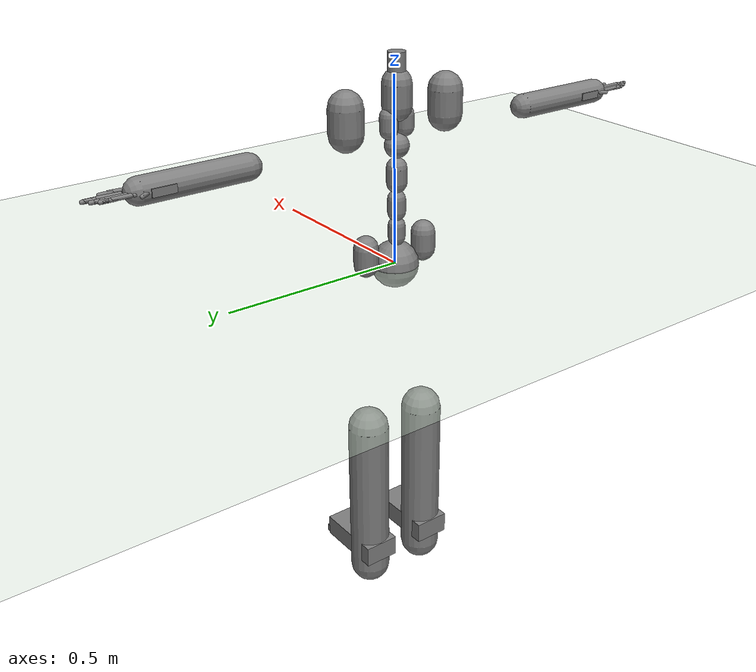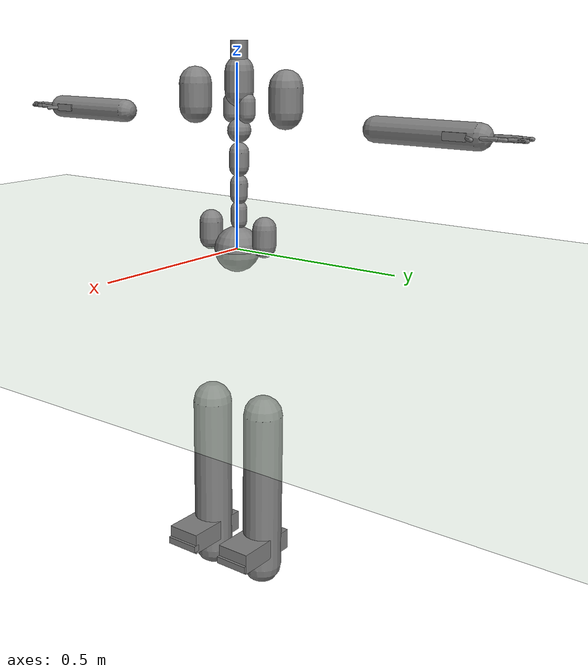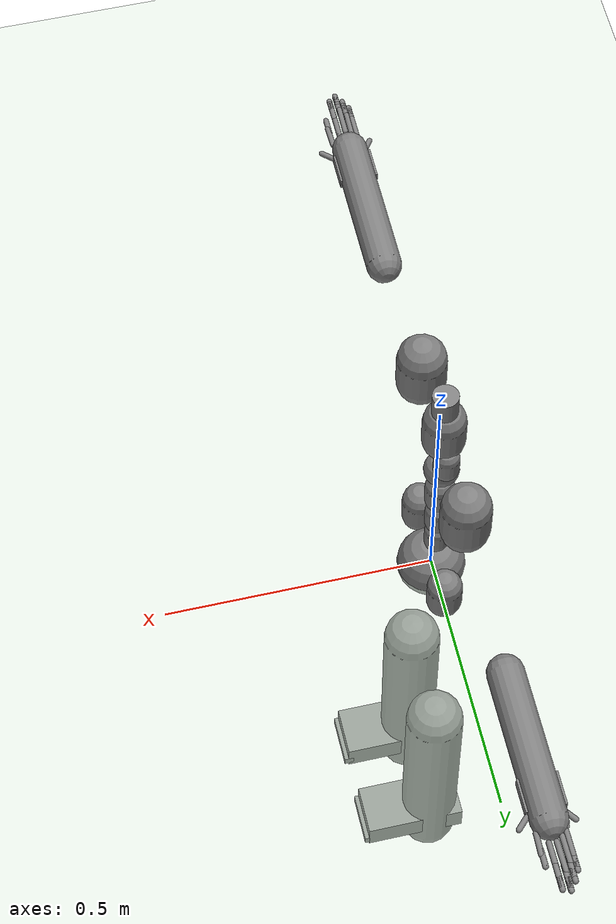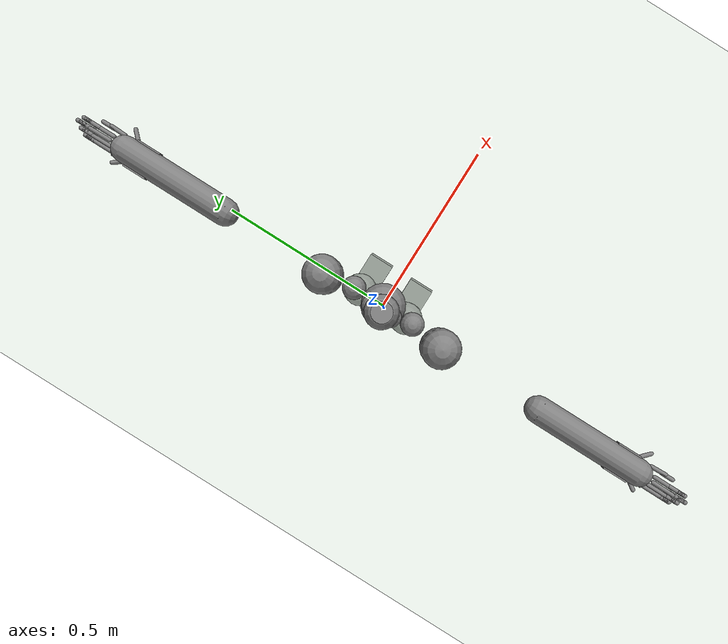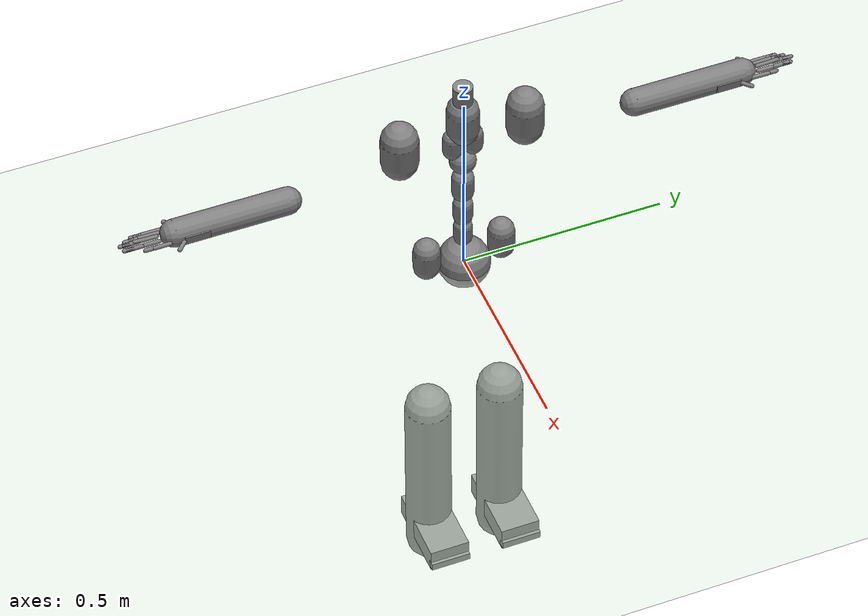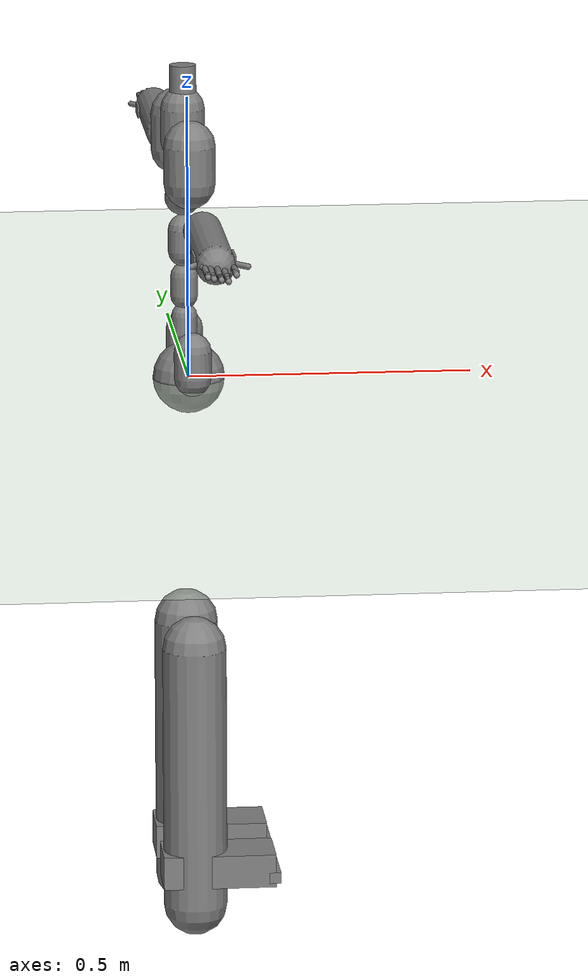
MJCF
<?xml version="1.0" ?>
<mujoco model="humanoid">
  <compiler coordinate="local"/>
  <statistic extent="2" center="0 0 1"/>
  <option timestep="0.00555"/>
  <default>
    <motor ctrlrange="-1 1" ctrllimited="true"/>
    <geom type="capsule" condim="1" friction="1.0 0.05 0.05" solimp=".9 .99 .003" solref=".015 1"/>
    <joint type="hinge" damping="0.1" stiffness="5" armature=".007" limited="true" solimplimit="0 .99 .01"/>
    <site size=".04" group="3"/>
  </default>
  <asset>
    <texture type="skybox" builtin="gradient" rgb1=".4 .5 .6" rgb2="0 0 0" width="100" height="100"/>
    <texture builtin="flat" height="1278" mark="cross" markrgb="1 1 1" name="texgeom" random="0.01" rgb1="0.8 0.6 0.4" rgb2="0.8 0.6 0.4" type="cube" width="127"/>
    <texture builtin="checker" height="100" name="texplane" rgb1="0 0 0" rgb2="0.8 0.8 0.8" type="2d" width="100"/>
    <material name="MatPlane" reflectance="0.5" shininess="1" specular="1" texrepeat="60 60" texture="texplane"/>
    <material name="geom" texture="texgeom" texuniform="true"/>
  </asset>
  <worldbody>
    <light cutoff="100" diffuse="1 1 1" dir="-0 0 -1.3" directional="true" exponent="1" pos="0 0 1.3" specular=".1 .1 .1"/>
    <geom conaffinity="1" condim="3" name="floor" pos="0 0 0" rgba="0.8 0.9 0.8 1" size="100 100 .2" type="plane" material="MatPlane"/>
    <body name="pHipOrigin" pos="0 0 0">
      <freejoint name="pHipOrigin"/>
      <geom type="sphere" contype="1" conaffinity="1" density="4629.6296296296305" size="0.06372" pos="0.0000 0.0000 -0.0000"/>
      <body name="jL5S1" pos="-0.00718035 0 0.06462294">
        <geom type="capsule" contype="1" conaffinity="1" density="1000" fromto="0 0 0.01300 0 0 0.04551" size="0.02276"/>
        <joint name="jL5S1_x" type="hinge" pos="0 0 0" axis="1 0 0" stiffness="500" damping="500" armature="0.02" range="-180.0000 180.0000"/>
        <joint name="jL5S1_y" type="hinge" pos="0 0 0" axis="0 1 0" stiffness="500" damping="500" armature="0.02" range="-180.0000 180.0000"/>
        <joint name="jL5S1_z" type="hinge" pos="0 0 0" axis="0 0 1" stiffness="500" damping="500" armature="0.02" range="-180.0000 180.0000"/>
        <body name="jL4L3" pos="0 0 0.06891633">
          <geom type="capsule" contype="1" conaffinity="1" density="1000" fromto="0 0 0.01378 0 0 0.04824" size="0.02412"/>
          <joint name="jL4L3_x" type="hinge" pos="0 0 0" axis="1 0 0" stiffness="500" damping="500" armature="0.02" range="-180.0000 180.0000"/>
          <joint name="jL4L3_y" type="hinge" pos="0 0 0" axis="0 1 0" stiffness="500" damping="500" armature="0.02" range="-180.0000 180.0000"/>
          <joint name="jL4L3_z" type="hinge" pos="0 0 0" axis="0 0 1" stiffness="500" damping="500" armature="0.02" range="-180.0000 180.0000"/>
          <body name="jL1T12" pos="-0.00059830 0 0.07754974">
            <geom type="capsule" contype="1" conaffinity="1" density="1000" fromto="0 0 0.01551 0 0 0.05429" size="0.02714"/>
            <joint name="jL1T12_x" type="hinge" pos="0 0 0" axis="1 0 0" stiffness="500" damping="500" armature="0.02" range="-180.0000 180.0000"/>
            <joint name="jL1T12_y" type="hinge" pos="0 0 0" axis="0 1 0" stiffness="500" damping="500" armature="0.02" range="-180.0000 180.0000"/>
            <joint name="jL1T12_z" type="hinge" pos="0 0 0" axis="0 0 1" stiffness="500" damping="500" armature="0.02" range="-180.0000 180.0000"/>
            <body name="jT9T8" pos="-0.00062355 0 0.08066581">
              <geom type="sphere" contype="1" conaffinity="1" density="1000" size="0.03227" pos="0.000 0.0000 0.032267"/>
              <joint name="jT9T8_x" type="hinge" pos="0 0 0" axis="1 0 0" stiffness="500" damping="500" armature="0.02" range="-180.0000 180.0000"/>
              <joint name="jT9T8_y" type="hinge" pos="0 0 0" axis="0 1 0" stiffness="500" damping="500" armature="0.02" range="-180.0000 180.0000"/>
              <joint name="jT9T8_z" type="hinge" pos="0 0 0" axis="0 0 1" stiffness="500" damping="500" armature="0.02" range="-180.0000 180.0000"/>
              <body name="jT1C7" pos="0 0 0.11084801">
                <geom type="capsule" contype="1" conaffinity="1" density="1000" fromto="0 0 0.02217 0 0 0.07759" size="0.03880"/>
                <joint name="jT1C7_x" type="hinge" pos="0 0 0" axis="1 0 0" stiffness="500" damping="500" armature="0.02" range="-180.0000 180.0000"/>
                <joint name="jT1C7_y" type="hinge" pos="0 0 0" axis="0 1 0" stiffness="500" damping="500" armature="0.02" range="-180.0000 180.0000"/>
                <joint name="jT1C7_z" type="hinge" pos="0 0 0" axis="0 0 1" stiffness="500" damping="500" armature="0.02" range="-180.0000 180.0000"/>
                <body name="jC1Head" pos="0.00091722 0 0.07774604">
                  <geom type="cylinder" contype="1" conaffinity="1" density="1000" fromto="0 0 0 0 0 0.07775" size="0.02333"/>
                  <joint name="jC1Head_x" type="hinge" pos="0 0 0" axis="1 0 0" stiffness="500" damping="500" armature="0.02" range="-180.0000 180.0000"/>
                  <joint name="jC1Head_y" type="hinge" pos="0 0 0" axis="0 1 0" stiffness="500" damping="500" armature="0.02" range="-180.0000 180.0000"/>
                  <joint name="jC1Head_z" type="hinge" pos="0 0 0" axis="0 0 1" stiffness="500" damping="500" armature="0.02" range="-180.0000 180.0000"/>
                </body>
              </body>
              <body name="jRightT4Shoulder" pos="0 -0.02539200 0.06191128">
                <geom type="capsule" contype="1" conaffinity="1" density="1000" fromto="0 0 0.01338 0 0 0.04684" size="0.02342"/>
                <joint name="jRightT4Shoulder_x" type="hinge" pos="0 0 0" axis="1 0 0" stiffness="500" damping="500" armature="0.02" range="-180.0000 180.0000"/>
                <joint name="jRightT4Shoulder_y" type="hinge" pos="0 0 0" axis="0 1 0" stiffness="500" damping="500" armature="0.02" range="-180.0000 180.0000"/>
                <joint name="jRightT4Shoulder_z" type="hinge" pos="0 0 0" axis="0 0 1" stiffness="500" damping="500" armature="0.02" range="-180.0000 180.0000"/>
                <body name="jRightShoulder" pos="0 -0.12868479 0">
                  <geom type="capsule" contype="1" conaffinity="1" density="1000" fromto="0 0 0.02574 0 0 0.09008" size="0.04504"/>
                  <joint name="jRightShoulder_x" type="hinge" pos="0 0 0" axis="1 0 0" stiffness="500" damping="500" armature="0.02" range="-180.0000 180.0000"/>
                  <joint name="jRightShoulder_y" type="hinge" pos="0 0 0" axis="0 1 0" stiffness="500" damping="500" armature="0.02" range="-180.0000 180.0000"/>
                  <joint name="jRightShoulder_z" type="hinge" pos="0 0 0" axis="0 0 1" stiffness="500" damping="500" armature="0.02" range="-180.0000 180.0000"/>
                  <body name="jRightElbow" pos="0 -0.27213329 0">
                    <geom type="capsule" contype="1" conaffinity="1" density="1000" fromto="0 0 0 0.00000000 -0.27213329 0.00000000" size="0.03266"/>
                    <joint name="jRightElbow_x" type="hinge" pos="0 0 0" axis="1 0 0" stiffness="500" damping="500" armature="0.02" range="-180.0000 180.0000"/>
                    <joint name="jRightElbow_y" type="hinge" pos="0 0 0" axis="0 1 0" stiffness="500" damping="500" armature="0.02" range="-180.0000 180.0000"/>
                    <joint name="jRightElbow_z" type="hinge" pos="0 0 0" axis="0 0 1" stiffness="500" damping="500" armature="0.02" range="-180.0000 180.0000"/>
                    <body name="jRightWrist" pos="0.00009098 -0.22603785 0">
                      <geom density="1000" type="box" pos="0 0 0" size="0.035 0.03 0.01" quat="1.0000 0.0000 0.0000 0.0000"/>
                      <joint name="jRightWrist_x" type="hinge" pos="0 0 0" axis="1 0 0" stiffness="500" damping="500" armature="0.02" range="-180.0000 180.0000"/>
                      <joint name="jRightWrist_y" type="hinge" pos="0 0 0" axis="0 1 0" stiffness="500" damping="500" armature="0.02" range="-180.0000 180.0000"/>
                      <joint name="jRightWrist_z" type="hinge" pos="0 0 0" axis="0 0 1" stiffness="500" damping="500" armature="0.02" range="-180.0000 180.0000"/>
                      <body name="jRightFirstCMC" pos="0.02623028 -0.02514320 -0.00118787">
                        <geom type="capsule" contype="1" conaffinity="1" density="1000" fromto="0 0 0 0.02623028 -0.02514320 -0.00118787" size="0.005"/>
                        <joint name="jRightFirstCMC_x" type="hinge" pos="0 0 0" axis="1 0 0" stiffness="500" damping="500" armature="0.02" range="-180.0000 180.0000"/>
                        <joint name="jRightFirstCMC_y" type="hinge" pos="0 0 0" axis="0 1 0" stiffness="500" damping="500" armature="0.02" range="-180.0000 180.0000"/>
                        <joint name="jRightFirstCMC_z" type="hinge" pos="0 0 0" axis="0 0 1" stiffness="500" damping="500" armature="0.02" range="-180.0000 180.0000"/>
                        <body name="jRightFirstMCP" pos="0.00136228 -0.03844255 0.00081229">
                          <geom type="capsule" contype="1" conaffinity="1" density="1000" fromto="0 0 0 0.00136228 -0.03844255 0.00081229" size="0.005"/>
                          <joint name="jRightFirstMCP_x" type="hinge" pos="0 0 0" axis="1 0 0" stiffness="500" damping="500" armature="0.02" range="-180.0000 180.0000"/>
                          <joint name="jRightFirstMCP_y" type="hinge" pos="0 0 0" axis="0 1 0" stiffness="500" damping="500" armature="0.02" range="-180.0000 180.0000"/>
                          <joint name="jRightFirstMCP_z" type="hinge" pos="0 0 0" axis="0 0 1" stiffness="500" damping="500" armature="0.02" range="-180.0000 180.0000"/>
                          <body name="jRightIP" pos="0 -0.02956805 0">
                            <geom type="capsule" contype="1" conaffinity="1" density="1000" fromto="0 0 0 0.00000000 -0.02956805 0.00000000" size="0.005"/>
                            <joint name="jRightIP_x" type="hinge" pos="0 0 0" axis="1 0 0" stiffness="500" damping="500" armature="0.02" range="-180.0000 180.0000"/>
                            <joint name="jRightIP_y" type="hinge" pos="0 0 0" axis="0 1 0" stiffness="500" damping="500" armature="0.02" range="-180.0000 180.0000"/>
                            <joint name="jRightIP_z" type="hinge" pos="0 0 0" axis="0 0 1" stiffness="500" damping="500" armature="0.02" range="-180.0000 180.0000"/>
                          </body>
                        </body>
                      </body>
                      <body name="jRightSecondCMC" pos="0.01115523 -0.03259207 -0.00056848">
                        <geom type="capsule" contype="1" conaffinity="1" density="1000" fromto="0 0 0 0.01115523 -0.03259207 -0.00056848" size="0.005"/>
                        <joint name="jRightSecondCMC_x" type="hinge" pos="0 0 0" axis="1 0 0" stiffness="500" damping="500" armature="0.02" range="-180.0000 180.0000"/>
                        <joint name="jRightSecondCMC_y" type="hinge" pos="0 0 0" axis="0 1 0" stiffness="500" damping="500" armature="0.02" range="-180.0000 180.0000"/>
                        <joint name="jRightSecondCMC_z" type="hinge" pos="0 0 0" axis="0 0 1" stiffness="500" damping="500" armature="0.02" range="-180.0000 180.0000"/>
                        <body name="jRightSecondMCP" pos="-0.00032715 -0.05217789 -0.00054126">
                          <geom type="capsule" contype="1" conaffinity="1" density="1000" fromto="0 0 0 -0.00032715 -0.05217789 -0.00054126" size="0.005"/>
                          <joint name="jRightSecondMCP_x" type="hinge" pos="0 0 0" axis="1 0 0" stiffness="500" damping="500" armature="0.02" range="-180.0000 180.0000"/>
                          <joint name="jRightSecondMCP_y" type="hinge" pos="0 0 0" axis="0 1 0" stiffness="500" damping="500" armature="0.02" range="-180.0000 180.0000"/>
                          <joint name="jRightSecondMCP_z" type="hinge" pos="0 0 0" axis="0 0 1" stiffness="500" damping="500" armature="0.02" range="-180.0000 180.0000"/>
                          <body name="jRightSecondPIP" pos="0 -0.03924358 0">
                            <geom type="capsule" contype="1" conaffinity="1" density="1000" fromto="0 0 0 0.00000000 -0.03924358 0.00000000" size="0.005"/>
                            <joint name="jRightSecondPIP_x" type="hinge" pos="0 0 0" axis="1 0 0" stiffness="500" damping="500" armature="0.02" range="-180.0000 180.0000"/>
                            <joint name="jRightSecondPIP_y" type="hinge" pos="0 0 0" axis="0 1 0" stiffness="500" damping="500" armature="0.02" range="-180.0000 180.0000"/>
                            <joint name="jRightSecondPIP_z" type="hinge" pos="0 0 0" axis="0 0 1" stiffness="500" damping="500" armature="0.02" range="-180.0000 180.0000"/>
                            <body name="jRightSecondDIP" pos="0 -0.02142911 0">
                              <geom type="capsule" contype="1" conaffinity="1" density="1000" fromto="0 0 0 0.00000000 -0.02142911 0.00000000" size="0.005"/>
                              <joint name="jRightSecondDIP_x" type="hinge" pos="0 0 0" axis="1 0 0" stiffness="500" damping="500" armature="0.02" range="-180.0000 180.0000"/>
                              <joint name="jRightSecondDIP_y" type="hinge" pos="0 0 0" axis="0 1 0" stiffness="500" damping="500" armature="0.02" range="-180.0000 180.0000"/>
                              <joint name="jRightSecondDIP_z" type="hinge" pos="0 0 0" axis="0 0 1" stiffness="500" damping="500" armature="0.02" range="-180.0000 180.0000"/>
                            </body>
                          </body>
                        </body>
                      </body>
                      <body name="jRightThirdCMC" pos="-0.00063336 -0.03425053 0.00143994">
                        <geom type="capsule" contype="1" conaffinity="1" density="1000" fromto="0 0 0 -0.00063336 -0.03425053 0.00143994" size="0.005"/>
                        <joint name="jRightThirdCMC_x" type="hinge" pos="0 0 0" axis="1 0 0" stiffness="500" damping="500" armature="0.02" range="-180.0000 180.0000"/>
                        <joint name="jRightThirdCMC_y" type="hinge" pos="0 0 0" axis="0 1 0" stiffness="500" damping="500" armature="0.02" range="-180.0000 180.0000"/>
                        <joint name="jRightThirdCMC_z" type="hinge" pos="0 0 0" axis="0 0 1" stiffness="500" damping="500" armature="0.02" range="-180.0000 180.0000"/>
                        <body name="jRightThirdMCP" pos="-0.00063458 -0.05257476 0.00143036">
                          <geom type="capsule" contype="1" conaffinity="1" density="1000" fromto="0 0 0 -0.00063458 -0.05257476 0.00143036" size="0.005"/>
                          <joint name="jRightThirdMCP_x" type="hinge" pos="0 0 0" axis="1 0 0" stiffness="500" damping="500" armature="0.02" range="-180.0000 180.0000"/>
                          <joint name="jRightThirdMCP_y" type="hinge" pos="0 0 0" axis="0 1 0" stiffness="500" damping="500" armature="0.02" range="-180.0000 180.0000"/>
                          <joint name="jRightThirdMCP_z" type="hinge" pos="0 0 0" axis="0 0 1" stiffness="500" damping="500" armature="0.02" range="-180.0000 180.0000"/>
                          <body name="jRightThirdPIP" pos="0 -0.04101169 0">
                            <geom type="capsule" contype="1" conaffinity="1" density="1000" fromto="0 0 0 0.00000000 -0.04101169 0.00000000" size="0.005"/>
                            <joint name="jRightThirdPIP_x" type="hinge" pos="0 0 0" axis="1 0 0" stiffness="500" damping="500" armature="0.02" range="-180.0000 180.0000"/>
                            <joint name="jRightThirdPIP_y" type="hinge" pos="0 0 0" axis="0 1 0" stiffness="500" damping="500" armature="0.02" range="-180.0000 180.0000"/>
                            <joint name="jRightThirdPIP_z" type="hinge" pos="0 0 0" axis="0 0 1" stiffness="500" damping="500" armature="0.02" range="-180.0000 180.0000"/>
                            <body name="jRightThirdDIP" pos="0 -0.02274145 0">
                              <geom type="capsule" contype="1" conaffinity="1" density="1000" fromto="0 0 0 0.00000000 -0.02274145 0.00000000" size="0.005"/>
                              <joint name="jRightThirdDIP_x" type="hinge" pos="0 0 0" axis="1 0 0" stiffness="500" damping="500" armature="0.02" range="-180.0000 180.0000"/>
                              <joint name="jRightThirdDIP_y" type="hinge" pos="0 0 0" axis="0 1 0" stiffness="500" damping="500" armature="0.02" range="-180.0000 180.0000"/>
                              <joint name="jRightThirdDIP_z" type="hinge" pos="0 0 0" axis="0 0 1" stiffness="500" damping="500" armature="0.02" range="-180.0000 180.0000"/>
                            </body>
                          </body>
                        </body>
                      </body>
                      <body name="jRightFourthCMC" pos="-0.01161715 -0.03235567 0.00076160">
                        <geom type="capsule" contype="1" conaffinity="1" density="1000" fromto="0 0 0 -0.01161715 -0.03235567 0.00076160" size="0.005"/>
                        <joint name="jRightFourthCMC_x" type="hinge" pos="0 0 0" axis="1 0 0" stiffness="500" damping="500" armature="0.02" range="-180.0000 180.0000"/>
                        <joint name="jRightFourthCMC_y" type="hinge" pos="0 0 0" axis="0 1 0" stiffness="500" damping="500" armature="0.02" range="-180.0000 180.0000"/>
                        <joint name="jRightFourthCMC_z" type="hinge" pos="0 0 0" axis="0 0 1" stiffness="500" damping="500" armature="0.02" range="-180.0000 180.0000"/>
                        <body name="jRightFourthMCP" pos="-0.00034028 -0.04663817 0.00073272">
                          <geom type="capsule" contype="1" conaffinity="1" density="1000" fromto="0 0 0 -0.00034028 -0.04663817 0.00073272" size="0.005"/>
                          <joint name="jRightFourthMCP_x" type="hinge" pos="0 0 0" axis="1 0 0" stiffness="500" damping="500" armature="0.02" range="-180.0000 180.0000"/>
                          <joint name="jRightFourthMCP_y" type="hinge" pos="0 0 0" axis="0 1 0" stiffness="500" damping="500" armature="0.02" range="-180.0000 180.0000"/>
                          <joint name="jRightFourthMCP_z" type="hinge" pos="0 0 0" axis="0 0 1" stiffness="500" damping="500" armature="0.02" range="-180.0000 180.0000"/>
                          <body name="jRightFourthPIP" pos="0 -0.03656799 0">
                            <geom type="capsule" contype="1" conaffinity="1" density="1000" fromto="0 0 0 0.00000000 -0.03656799 0.00000000" size="0.005"/>
                            <joint name="jRightFourthPIP_x" type="hinge" pos="0 0 0" axis="1 0 0" stiffness="500" damping="500" armature="0.02" range="-180.0000 180.0000"/>
                            <joint name="jRightFourthPIP_y" type="hinge" pos="0 0 0" axis="0 1 0" stiffness="500" damping="500" armature="0.02" range="-180.0000 180.0000"/>
                            <joint name="jRightFourthPIP_z" type="hinge" pos="0 0 0" axis="0 0 1" stiffness="500" damping="500" armature="0.02" range="-180.0000 180.0000"/>
                            <body name="jRightFourthDIP" pos="0 -0.02168475 0">
                              <geom type="capsule" contype="1" conaffinity="1" density="1000" fromto="0 0 0 0.00000000 -0.02168475 0.00000000" size="0.005"/>
                              <joint name="jRightFourthDIP_x" type="hinge" pos="0 0 0" axis="1 0 0" stiffness="500" damping="500" armature="0.02" range="-180.0000 180.0000"/>
                              <joint name="jRightFourthDIP_y" type="hinge" pos="0 0 0" axis="0 1 0" stiffness="500" damping="500" armature="0.02" range="-180.0000 180.0000"/>
                              <joint name="jRightFourthDIP_z" type="hinge" pos="0 0 0" axis="0 0 1" stiffness="500" damping="500" armature="0.02" range="-180.0000 180.0000"/>
                            </body>
                          </body>
                        </body>
                      </body>
                      <body name="jRightFifthCMC" pos="-0.02037089 -0.02838451 0.00055994">
                        <geom type="capsule" contype="1" conaffinity="1" density="1000" fromto="0 0 0 -0.02037089 -0.02838451 0.00055994" size="0.005"/>
                        <joint name="jRightFifthCMC_x" type="hinge" pos="0 0 0" axis="1 0 0" stiffness="500" damping="500" armature="0.02" range="-180.0000 180.0000"/>
                        <joint name="jRightFifthCMC_y" type="hinge" pos="0 0 0" axis="0 1 0" stiffness="500" damping="500" armature="0.02" range="-180.0000 180.0000"/>
                        <joint name="jRightFifthCMC_z" type="hinge" pos="0 0 0" axis="0 0 1" stiffness="500" damping="500" armature="0.02" range="-180.0000 180.0000"/>
                        <body name="jRightFifthMCP" pos="-0.00000645 -0.04369948 0.00060136">
                          <geom type="capsule" contype="1" conaffinity="1" density="1000" fromto="0 0 0 -0.00000645 -0.04369948 0.00060136" size="0.005"/>
                          <joint name="jRightFifthMCP_x" type="hinge" pos="0 0 0" axis="1 0 0" stiffness="500" damping="500" armature="0.02" range="-180.0000 180.0000"/>
                          <joint name="jRightFifthMCP_y" type="hinge" pos="0 0 0" axis="0 1 0" stiffness="500" damping="500" armature="0.02" range="-180.0000 180.0000"/>
                          <joint name="jRightFifthMCP_z" type="hinge" pos="0 0 0" axis="0 0 1" stiffness="500" damping="500" armature="0.02" range="-180.0000 180.0000"/>
                          <body name="jRightFifthPIP" pos="0 -0.03273370 0">
                            <geom type="capsule" contype="1" conaffinity="1" density="1000" fromto="0 0 0 0.00000000 -0.03273370 0.00000000" size="0.005"/>
                            <joint name="jRightFifthPIP_x" type="hinge" pos="0 0 0" axis="1 0 0" stiffness="500" damping="500" armature="0.02" range="-180.0000 180.0000"/>
                            <joint name="jRightFifthPIP_y" type="hinge" pos="0 0 0" axis="0 1 0" stiffness="500" damping="500" armature="0.02" range="-180.0000 180.0000"/>
                            <joint name="jRightFifthPIP_z" type="hinge" pos="0 0 0" axis="0 0 1" stiffness="500" damping="500" armature="0.02" range="-180.0000 180.0000"/>
                            <body name="jRightFifthDIP" pos="0 -0.01849218 0">
                              <geom type="capsule" contype="1" conaffinity="1" density="1000" fromto="0 0 0 0.00000000 -0.01849218 0.00000000" size="0.005"/>
                              <joint name="jRightFifthDIP_x" type="hinge" pos="0 0 0" axis="1 0 0" stiffness="500" damping="500" armature="0.02" range="-180.0000 180.0000"/>
                              <joint name="jRightFifthDIP_y" type="hinge" pos="0 0 0" axis="0 1 0" stiffness="500" damping="500" armature="0.02" range="-180.0000 180.0000"/>
                              <joint name="jRightFifthDIP_z" type="hinge" pos="0 0 0" axis="0 0 1" stiffness="500" damping="500" armature="0.02" range="-180.0000 180.0000"/>
                            </body>
                          </body>
                        </body>
                      </body>
                    </body>
                  </body>
                </body>
              </body>
              <body name="jLeftT4Shoulder" pos="0 0.02546286 0.06208405">
                <geom type="capsule" contype="1" conaffinity="1" density="1000" fromto="0 0 0.01342 0 0 0.04697" size="0.02349"/>
                <joint name="jLeftT4Shoulder_x" type="hinge" pos="0 0 0" axis="1 0 0" stiffness="500" damping="500" armature="0.02" range="-180.0000 180.0000"/>
                <joint name="jLeftT4Shoulder_y" type="hinge" pos="0 0 0" axis="0 1 0" stiffness="500" damping="500" armature="0.02" range="-180.0000 180.0000"/>
                <joint name="jLeftT4Shoulder_z" type="hinge" pos="0 0 0" axis="0 0 1" stiffness="500" damping="500" armature="0.02" range="-180.0000 180.0000"/>
                <body name="jLeftShoulder" pos="0 0.12795460 0">
                  <geom type="capsule" contype="1" conaffinity="1" density="1000" fromto="0 0 0.02559 0 0 0.08957" size="0.04478"/>
                  <joint name="jLeftShoulder_x" type="hinge" pos="0 0 0" axis="1 0 0" stiffness="500" damping="500" armature="0.02" range="-180.0000 180.0000"/>
                  <joint name="jLeftShoulder_y" type="hinge" pos="0 0 0" axis="0 1 0" stiffness="500" damping="500" armature="0.02" range="-180.0000 180.0000"/>
                  <joint name="jLeftShoulder_z" type="hinge" pos="0 0 0" axis="0 0 1" stiffness="500" damping="500" armature="0.02" range="-180.0000 180.0000"/>
                  <body name="jLeftElbow" pos="0 0.27217937 0">
                    <geom type="capsule" contype="1" conaffinity="1" density="1000" fromto="0 0 0 0.00000000 0.27217937 0.00000000" size="0.03266"/>
                    <joint name="jLeftElbow_x" type="hinge" pos="0 0 0" axis="1 0 0" stiffness="500" damping="500" armature="0.02" range="-180.0000 180.0000"/>
                    <joint name="jLeftElbow_y" type="hinge" pos="0 0 0" axis="0 1 0" stiffness="500" damping="500" armature="0.02" range="-180.0000 180.0000"/>
                    <joint name="jLeftElbow_z" type="hinge" pos="0 0 0" axis="0 0 1" stiffness="500" damping="500" armature="0.02" range="-180.0000 180.0000"/>
                    <body name="jLeftWrist" pos="0.00009058 0.22505700 0">
                      <geom density="1000" type="box" pos="0 0 0" size="0.035 0.03 0.01" quat="1.0000 0.0000 0.0000 0.0000"/>
                      <joint name="jLeftWrist_x" type="hinge" pos="0 0 0" axis="1 0 0" stiffness="500" damping="500" armature="0.02" range="-180.0000 180.0000"/>
                      <joint name="jLeftWrist_y" type="hinge" pos="0 0 0" axis="0 1 0" stiffness="500" damping="500" armature="0.02" range="-180.0000 180.0000"/>
                      <joint name="jLeftWrist_z" type="hinge" pos="0 0 0" axis="0 0 1" stiffness="500" damping="500" armature="0.02" range="-180.0000 180.0000"/>
                      <body name="jLeftFirstCMC" pos="0.02567327 0.02573390 -0.00114905">
                        <geom type="capsule" contype="1" conaffinity="1" density="1000" fromto="0 0 0 0.02567327 0.02573390 -0.00114905" size="0.005"/>
                        <joint name="jLeftFirstCMC_x" type="hinge" pos="0 0 0" axis="1 0 0" stiffness="500" damping="500" armature="0.02" range="-180.0000 180.0000"/>
                        <joint name="jLeftFirstCMC_y" type="hinge" pos="0 0 0" axis="0 1 0" stiffness="500" damping="500" armature="0.02" range="-180.0000 180.0000"/>
                        <joint name="jLeftFirstCMC_z" type="hinge" pos="0 0 0" axis="0 0 1" stiffness="500" damping="500" armature="0.02" range="-180.0000 180.0000"/>
                        <body name="jLeftFirstMCP" pos="0.00134915 0.03844168 0.00079161">
                          <geom type="capsule" contype="1" conaffinity="1" density="1000" fromto="0 0 0 0.00134915 0.03844168 0.00079161" size="0.005"/>
                          <joint name="jLeftFirstMCP_x" type="hinge" pos="0 0 0" axis="1 0 0" stiffness="500" damping="500" armature="0.02" range="-180.0000 180.0000"/>
                          <joint name="jLeftFirstMCP_y" type="hinge" pos="0 0 0" axis="0 1 0" stiffness="500" damping="500" armature="0.02" range="-180.0000 180.0000"/>
                          <joint name="jLeftFirstMCP_z" type="hinge" pos="0 0 0" axis="0 0 1" stiffness="500" damping="500" armature="0.02" range="-180.0000 180.0000"/>
                          <body name="jLeftIP" pos="0 0.02956805 0">
                            <geom type="capsule" contype="1" conaffinity="1" density="1000" fromto="0 0 0 0.00000000 0.02956805 0.00000000" size="0.005"/>
                            <joint name="jLeftIP_x" type="hinge" pos="0 0 0" axis="1 0 0" stiffness="500" damping="500" armature="0.02" range="-180.0000 180.0000"/>
                            <joint name="jLeftIP_y" type="hinge" pos="0 0 0" axis="0 1 0" stiffness="500" damping="500" armature="0.02" range="-180.0000 180.0000"/>
                            <joint name="jLeftIP_z" type="hinge" pos="0 0 0" axis="0 0 1" stiffness="500" damping="500" armature="0.02" range="-180.0000 180.0000"/>
                          </body>
                        </body>
                      </body>
                      <body name="jLeftSecondCMC" pos="0.01128372 0.03253210 -0.00057318">
                        <geom type="capsule" contype="1" conaffinity="1" density="1000" fromto="0 0 0 0.01128372 0.03253210 -0.00057318" size="0.005"/>
                        <joint name="jLeftSecondCMC_x" type="hinge" pos="0 0 0" axis="1 0 0" stiffness="500" damping="500" armature="0.02" range="-180.0000 180.0000"/>
                        <joint name="jLeftSecondCMC_y" type="hinge" pos="0 0 0" axis="0 1 0" stiffness="500" damping="500" armature="0.02" range="-180.0000 180.0000"/>
                        <joint name="jLeftSecondCMC_z" type="hinge" pos="0 0 0" axis="0 0 1" stiffness="500" damping="500" armature="0.02" range="-180.0000 180.0000"/>
                        <body name="jLeftSecondMCP" pos="-0.00028525 0.05217896 -0.00054794">
                          <geom type="capsule" contype="1" conaffinity="1" density="1000" fromto="0 0 0 -0.00028525 0.05217896 -0.00054794" size="0.005"/>
                          <joint name="jLeftSecondMCP_x" type="hinge" pos="0 0 0" axis="1 0 0" stiffness="500" damping="500" armature="0.02" range="-180.0000 180.0000"/>
                          <joint name="jLeftSecondMCP_y" type="hinge" pos="0 0 0" axis="0 1 0" stiffness="500" damping="500" armature="0.02" range="-180.0000 180.0000"/>
                          <joint name="jLeftSecondMCP_z" type="hinge" pos="0 0 0" axis="0 0 1" stiffness="500" damping="500" armature="0.02" range="-180.0000 180.0000"/>
                          <body name="jLeftSecondPIP" pos="0 0.03924358 0">
                            <geom type="capsule" contype="1" conaffinity="1" density="1000" fromto="0 0 0 0.00000000 0.03924358 0.00000000" size="0.005"/>
                            <joint name="jLeftSecondPIP_x" type="hinge" pos="0 0 0" axis="1 0 0" stiffness="500" damping="500" armature="0.02" range="-180.0000 180.0000"/>
                            <joint name="jLeftSecondPIP_y" type="hinge" pos="0 0 0" axis="0 1 0" stiffness="500" damping="500" armature="0.02" range="-180.0000 180.0000"/>
                            <joint name="jLeftSecondPIP_z" type="hinge" pos="0 0 0" axis="0 0 1" stiffness="500" damping="500" armature="0.02" range="-180.0000 180.0000"/>
                            <body name="jLeftSecondDIP" pos="0 0.02142911 0">
                              <geom type="capsule" contype="1" conaffinity="1" density="1000" fromto="0 0 0 0.00000000 0.02142911 0.00000000" size="0.005"/>
                              <joint name="jLeftSecondDIP_x" type="hinge" pos="0 0 0" axis="1 0 0" stiffness="500" damping="500" armature="0.02" range="-180.0000 180.0000"/>
                              <joint name="jLeftSecondDIP_y" type="hinge" pos="0 0 0" axis="0 1 0" stiffness="500" damping="500" armature="0.02" range="-180.0000 180.0000"/>
                              <joint name="jLeftSecondDIP_z" type="hinge" pos="0 0 0" axis="0 0 1" stiffness="500" damping="500" armature="0.02" range="-180.0000 180.0000"/>
                            </body>
                          </body>
                        </body>
                      </body>
                      <body name="jLeftThirdCMC" pos="-0.00063708 0.03425361 0.00139195">
                        <geom type="capsule" contype="1" conaffinity="1" density="1000" fromto="0 0 0 -0.00063708 0.03425361 0.00139195" size="0.005"/>
                        <joint name="jLeftThirdCMC_x" type="hinge" pos="0 0 0" axis="1 0 0" stiffness="500" damping="500" armature="0.02" range="-180.0000 180.0000"/>
                        <joint name="jLeftThirdCMC_y" type="hinge" pos="0 0 0" axis="0 1 0" stiffness="500" damping="500" armature="0.02" range="-180.0000 180.0000"/>
                        <joint name="jLeftThirdCMC_z" type="hinge" pos="0 0 0" axis="0 0 1" stiffness="500" damping="500" armature="0.02" range="-180.0000 180.0000"/>
                        <body name="jLeftThirdMCP" pos="-0.00063970 0.05257578 0.00140160">
                          <geom type="capsule" contype="1" conaffinity="1" density="1000" fromto="0 0 0 -0.00063970 0.05257578 0.00140160" size="0.005"/>
                          <joint name="jLeftThirdMCP_x" type="hinge" pos="0 0 0" axis="1 0 0" stiffness="500" damping="500" armature="0.02" range="-180.0000 180.0000"/>
                          <joint name="jLeftThirdMCP_y" type="hinge" pos="0 0 0" axis="0 1 0" stiffness="500" damping="500" armature="0.02" range="-180.0000 180.0000"/>
                          <joint name="jLeftThirdMCP_z" type="hinge" pos="0 0 0" axis="0 0 1" stiffness="500" damping="500" armature="0.02" range="-180.0000 180.0000"/>
                          <body name="jLeftThirdPIP" pos="0 0.04101169 0">
                            <geom type="capsule" contype="1" conaffinity="1" density="1000" fromto="0 0 0 0.00000000 0.04101169 0.00000000" size="0.005"/>
                            <joint name="jLeftThirdPIP_x" type="hinge" pos="0 0 0" axis="1 0 0" stiffness="500" damping="500" armature="0.02" range="-180.0000 180.0000"/>
                            <joint name="jLeftThirdPIP_y" type="hinge" pos="0 0 0" axis="0 1 0" stiffness="500" damping="500" armature="0.02" range="-180.0000 180.0000"/>
                            <joint name="jLeftThirdPIP_z" type="hinge" pos="0 0 0" axis="0 0 1" stiffness="500" damping="500" armature="0.02" range="-180.0000 180.0000"/>
                            <body name="jLeftThirdDIP" pos="0 0.02274145 0">
                              <geom type="capsule" contype="1" conaffinity="1" density="1000" fromto="0 0 0 0.00000000 0.02274145 0.00000000" size="0.005"/>
                              <joint name="jLeftThirdDIP_x" type="hinge" pos="0 0 0" axis="1 0 0" stiffness="500" damping="500" armature="0.02" range="-180.0000 180.0000"/>
                              <joint name="jLeftThirdDIP_y" type="hinge" pos="0 0 0" axis="0 1 0" stiffness="500" damping="500" armature="0.02" range="-180.0000 180.0000"/>
                              <joint name="jLeftThirdDIP_z" type="hinge" pos="0 0 0" axis="0 0 1" stiffness="500" damping="500" armature="0.02" range="-180.0000 180.0000"/>
                            </body>
                          </body>
                        </body>
                      </body>
                      <body name="jLeftFourthCMC" pos="-0.01204342 0.03219017 0.00081300">
                        <geom type="capsule" contype="1" conaffinity="1" density="1000" fromto="0 0 0 -0.01204342 0.03219017 0.00081300" size="0.005"/>
                        <joint name="jLeftFourthCMC_x" type="hinge" pos="0 0 0" axis="1 0 0" stiffness="500" damping="500" armature="0.02" range="-180.0000 180.0000"/>
                        <joint name="jLeftFourthCMC_y" type="hinge" pos="0 0 0" axis="0 1 0" stiffness="500" damping="500" armature="0.02" range="-180.0000 180.0000"/>
                        <joint name="jLeftFourthCMC_z" type="hinge" pos="0 0 0" axis="0 0 1" stiffness="500" damping="500" armature="0.02" range="-180.0000 180.0000"/>
                        <body name="jLeftFourthMCP" pos="-0.00036594 0.04663550 0.00077494">
                          <geom type="capsule" contype="1" conaffinity="1" density="1000" fromto="0 0 0 -0.00036594 0.04663550 0.00077494" size="0.005"/>
                          <joint name="jLeftFourthMCP_x" type="hinge" pos="0 0 0" axis="1 0 0" stiffness="500" damping="500" armature="0.02" range="-180.0000 180.0000"/>
                          <joint name="jLeftFourthMCP_y" type="hinge" pos="0 0 0" axis="0 1 0" stiffness="500" damping="500" armature="0.02" range="-180.0000 180.0000"/>
                          <joint name="jLeftFourthMCP_z" type="hinge" pos="0 0 0" axis="0 0 1" stiffness="500" damping="500" armature="0.02" range="-180.0000 180.0000"/>
                          <body name="jLeftFourthPIP" pos="0 0.03656799 0">
                            <geom type="capsule" contype="1" conaffinity="1" density="1000" fromto="0 0 0 0.00000000 0.03656799 0.00000000" size="0.005"/>
                            <joint name="jLeftFourthPIP_x" type="hinge" pos="0 0 0" axis="1 0 0" stiffness="500" damping="500" armature="0.02" range="-180.0000 180.0000"/>
                            <joint name="jLeftFourthPIP_y" type="hinge" pos="0 0 0" axis="0 1 0" stiffness="500" damping="500" armature="0.02" range="-180.0000 180.0000"/>
                            <joint name="jLeftFourthPIP_z" type="hinge" pos="0 0 0" axis="0 0 1" stiffness="500" damping="500" armature="0.02" range="-180.0000 180.0000"/>
                            <body name="jLeftFourthDIP" pos="0 0.02168475 0">
                              <geom type="capsule" contype="1" conaffinity="1" density="1000" fromto="0 0 0 0.00000000 0.02168475 0.00000000" size="0.005"/>
                              <joint name="jLeftFourthDIP_x" type="hinge" pos="0 0 0" axis="1 0 0" stiffness="500" damping="500" armature="0.02" range="-180.0000 180.0000"/>
                              <joint name="jLeftFourthDIP_y" type="hinge" pos="0 0 0" axis="0 1 0" stiffness="500" damping="500" armature="0.02" range="-180.0000 180.0000"/>
                              <joint name="jLeftFourthDIP_z" type="hinge" pos="0 0 0" axis="0 0 1" stiffness="500" damping="500" armature="0.02" range="-180.0000 180.0000"/>
                            </body>
                          </body>
                        </body>
                      </body>
                      <body name="jLeftFifthCMC" pos="-0.02098800 0.02793577 0.00056894">
                        <geom type="capsule" contype="1" conaffinity="1" density="1000" fromto="0 0 0 -0.02098800 0.02793577 0.00056894" size="0.005"/>
                        <joint name="jLeftFifthCMC_x" type="hinge" pos="0 0 0" axis="1 0 0" stiffness="500" damping="500" armature="0.02" range="-180.0000 180.0000"/>
                        <joint name="jLeftFifthCMC_y" type="hinge" pos="0 0 0" axis="0 1 0" stiffness="500" damping="500" armature="0.02" range="-180.0000 180.0000"/>
                        <joint name="jLeftFifthCMC_z" type="hinge" pos="0 0 0" axis="0 0 1" stiffness="500" damping="500" armature="0.02" range="-180.0000 180.0000"/>
                        <body name="jLeftFifthMCP" pos="-0.00001239 0.04369828 0.00062879">
                          <geom type="capsule" contype="1" conaffinity="1" density="1000" fromto="0 0 0 -0.00001239 0.04369828 0.00062879" size="0.005"/>
                          <joint name="jLeftFifthMCP_x" type="hinge" pos="0 0 0" axis="1 0 0" stiffness="500" damping="500" armature="0.02" range="-180.0000 180.0000"/>
                          <joint name="jLeftFifthMCP_y" type="hinge" pos="0 0 0" axis="0 1 0" stiffness="500" damping="500" armature="0.02" range="-180.0000 180.0000"/>
                          <joint name="jLeftFifthMCP_z" type="hinge" pos="0 0 0" axis="0 0 1" stiffness="500" damping="500" armature="0.02" range="-180.0000 180.0000"/>
                          <body name="jLeftFifthPIP" pos="0 0.03273370 0">
                            <geom type="capsule" contype="1" conaffinity="1" density="1000" fromto="0 0 0 0.00000000 0.03273370 0.00000000" size="0.005"/>
                            <joint name="jLeftFifthPIP_x" type="hinge" pos="0 0 0" axis="1 0 0" stiffness="500" damping="500" armature="0.02" range="-180.0000 180.0000"/>
                            <joint name="jLeftFifthPIP_y" type="hinge" pos="0 0 0" axis="0 1 0" stiffness="500" damping="500" armature="0.02" range="-180.0000 180.0000"/>
                            <joint name="jLeftFifthPIP_z" type="hinge" pos="0 0 0" axis="0 0 1" stiffness="500" damping="500" armature="0.02" range="-180.0000 180.0000"/>
                            <body name="jLeftFifthDIP" pos="0 0.01849218 0">
                              <geom type="capsule" contype="1" conaffinity="1" density="1000" fromto="0 0 0 0.00000000 0.01849218 0.00000000" size="0.005"/>
                              <joint name="jLeftFifthDIP_x" type="hinge" pos="0 0 0" axis="1 0 0" stiffness="500" damping="500" armature="0.02" range="-180.0000 180.0000"/>
                              <joint name="jLeftFifthDIP_y" type="hinge" pos="0 0 0" axis="0 1 0" stiffness="500" damping="500" armature="0.02" range="-180.0000 180.0000"/>
                              <joint name="jLeftFifthDIP_z" type="hinge" pos="0 0 0" axis="0 0 1" stiffness="500" damping="500" armature="0.02" range="-180.0000 180.0000"/>
                            </body>
                          </body>
                        </body>
                      </body>
                    </body>
                  </body>
                </body>
              </body>
            </body>
          </body>
        </body>
      </body>
      <body name="jRightHip" pos="-0.00015799 -0.09375737 0.00142227">
        <geom type="capsule" contype="1" conaffinity="1" density="1000" fromto="0 0 0.01875 0 0 0.06564" size="0.03282"/>
        <joint name="jRightHip_x" type="hinge" pos="0 0 0" axis="1 0 0" stiffness="500" damping="500" armature="0.02" range="-180.0000 180.0000"/>
        <joint name="jRightHip_y" type="hinge" pos="0 0 0" axis="0 1 0" stiffness="500" damping="500" armature="0.02" range="-180.0000 180.0000"/>
        <joint name="jRightHip_z" type="hinge" pos="0 0 0" axis="0 0 1" stiffness="500" damping="500" armature="0.02" range="-180.0000 180.0000"/>
        <body name="jRightKnee" pos="0.00005645 0 -0.47341096">
          <geom type="capsule" contype="1" conaffinity="1" density="1000" fromto="0 0 0 0.00005645 0.00000000 -0.47341096" size="0.05681"/>
          <joint name="jRightKnee_x" type="hinge" pos="0 0 0" axis="1 0 0" stiffness="500" damping="500" armature="0.02" range="-180.0000 180.0000"/>
          <joint name="jRightKnee_y" type="hinge" pos="0 0 0" axis="0 1 0" stiffness="500" damping="500" armature="0.02" range="-180.0000 180.0000"/>
          <joint name="jRightKnee_z" type="hinge" pos="0 0 0" axis="0 0 1" stiffness="500" damping="500" armature="0.02" range="-180.0000 180.0000"/>
          <body name="jRightAnkle" pos="0.00042030 0 -0.37222975">
            <geom density="1000" type="box" pos="0.04 0. -0.03" size="0.1 0.05 0.03" quat="1.0 0 0 0"/>
            <joint name="jRightAnkle_x" type="hinge" pos="0 0 0" axis="1 0 0" stiffness="500" damping="500" armature="0.02" range="-180.0000 180.0000"/>
            <joint name="jRightAnkle_y" type="hinge" pos="0 0 0" axis="0 1 0" stiffness="500" damping="500" armature="0.02" range="-180.0000 180.0000"/>
            <joint name="jRightAnkle_z" type="hinge" pos="0 0 0" axis="0 0 1" stiffness="500" damping="500" armature="0.02" range="-180.0000 180.0000"/>
            <body name="jRightBallFoot" pos="0.13857605 0 -0.06357329">
              <geom density="1000" type="box" pos="0 0 0.02" size="0.01 0.05 0.01" quat="1.0 0 0 0"/>
              <joint name="jRightBallFoot_x" type="hinge" pos="0 0 0" axis="1 0 0" stiffness="500" damping="500" armature="0.02" range="-180.0000 180.0000"/>
              <joint name="jRightBallFoot_y" type="hinge" pos="0 0 0" axis="0 1 0" stiffness="500" damping="500" armature="0.02" range="-180.0000 180.0000"/>
              <joint name="jRightBallFoot_z" type="hinge" pos="0 0 0" axis="0 0 1" stiffness="500" damping="500" armature="0.02" range="-180.0000 180.0000"/>
            </body>
          </body>
        </body>
      </body>
      <body name="jLeftHip" pos="-0.00015550 0.09348872 0.00139944">
        <geom type="capsule" contype="1" conaffinity="1" density="1000" fromto="0 0 0.01870 0 0 0.06545" size="0.03272"/>
        <joint name="jLeftHip_x" type="hinge" pos="0 0 0" axis="1 0 0" stiffness="500" damping="500" armature="0.02" range="-180.0000 180.0000"/>
        <joint name="jLeftHip_y" type="hinge" pos="0 0 0" axis="0 1 0" stiffness="500" damping="500" armature="0.02" range="-180.0000 180.0000"/>
        <joint name="jLeftHip_z" type="hinge" pos="0 0 0" axis="0 0 1" stiffness="500" damping="500" armature="0.02" range="-180.0000 180.0000"/>
        <body name="jLeftKnee" pos="0.00005648 0 -0.47367876">
          <geom type="capsule" contype="1" conaffinity="1" density="1000" fromto="0 0 0 0.00005648 0.00000000 -0.47367876" size="0.05684"/>
          <joint name="jLeftKnee_x" type="hinge" pos="0 0 0" axis="1 0 0" stiffness="500" damping="500" armature="0.02" range="-180.0000 180.0000"/>
          <joint name="jLeftKnee_y" type="hinge" pos="0 0 0" axis="0 1 0" stiffness="500" damping="500" armature="0.02" range="-180.0000 180.0000"/>
          <joint name="jLeftKnee_z" type="hinge" pos="0 0 0" axis="0 0 1" stiffness="500" damping="500" armature="0.02" range="-180.0000 180.0000"/>
          <body name="jLeftAnkle" pos="0.00042030 0 -0.37222975">
            <geom density="1000" type="box" pos="0.04 0. -0.03" size="0.1 0.05 0.03" quat="1.0 0 0 0"/>
            <joint name="jLeftAnkle_x" type="hinge" pos="0 0 0" axis="1 0 0" stiffness="500" damping="500" armature="0.02" range="-180.0000 180.0000"/>
            <joint name="jLeftAnkle_y" type="hinge" pos="0 0 0" axis="0 1 0" stiffness="500" damping="500" armature="0.02" range="-180.0000 180.0000"/>
            <joint name="jLeftAnkle_z" type="hinge" pos="0 0 0" axis="0 0 1" stiffness="500" damping="500" armature="0.02" range="-180.0000 180.0000"/>
            <body name="jLeftBallFoot" pos="0.13857605 0 -0.06357329">
              <geom density="1000" type="box" pos="0 0 0.02" size="0.01 0.05 0.01" quat="1.0 0 0 0"/>
              <joint name="jLeftBallFoot_x" type="hinge" pos="0 0 0" axis="1 0 0" stiffness="500" damping="500" armature="0.02" range="-180.0000 180.0000"/>
              <joint name="jLeftBallFoot_y" type="hinge" pos="0 0 0" axis="0 1 0" stiffness="500" damping="500" armature="0.02" range="-180.0000 180.0000"/>
              <joint name="jLeftBallFoot_z" type="hinge" pos="0 0 0" axis="0 0 1" stiffness="500" damping="500" armature="0.02" range="-180.0000 180.0000"/>
            </body>
          </body>
        </body>
      </body>
    </body>
  </worldbody>
  <actuator>
    <motor name="jL5S1_x" joint="jL5S1_x" gear="500"/>
    <motor name="jL5S1_y" joint="jL5S1_y" gear="500"/>
    <motor name="jL5S1_z" joint="jL5S1_z" gear="500"/>
    <motor name="jL4L3_x" joint="jL4L3_x" gear="500"/>
    <motor name="jL4L3_y" joint="jL4L3_y" gear="500"/>
    <motor name="jL4L3_z" joint="jL4L3_z" gear="500"/>
    <motor name="jL1T12_x" joint="jL1T12_x" gear="500"/>
    <motor name="jL1T12_y" joint="jL1T12_y" gear="500"/>
    <motor name="jL1T12_z" joint="jL1T12_z" gear="500"/>
    <motor name="jT9T8_x" joint="jT9T8_x" gear="500"/>
    <motor name="jT9T8_y" joint="jT9T8_y" gear="500"/>
    <motor name="jT9T8_z" joint="jT9T8_z" gear="500"/>
    <motor name="jT1C7_x" joint="jT1C7_x" gear="500"/>
    <motor name="jT1C7_y" joint="jT1C7_y" gear="500"/>
    <motor name="jT1C7_z" joint="jT1C7_z" gear="500"/>
    <motor name="jC1Head_x" joint="jC1Head_x" gear="500"/>
    <motor name="jC1Head_y" joint="jC1Head_y" gear="500"/>
    <motor name="jC1Head_z" joint="jC1Head_z" gear="500"/>
    <motor name="jRightT4Shoulder_x" joint="jRightT4Shoulder_x" gear="500"/>
    <motor name="jRightT4Shoulder_y" joint="jRightT4Shoulder_y" gear="500"/>
    <motor name="jRightT4Shoulder_z" joint="jRightT4Shoulder_z" gear="500"/>
    <motor name="jRightShoulder_x" joint="jRightShoulder_x" gear="500"/>
    <motor name="jRightShoulder_y" joint="jRightShoulder_y" gear="500"/>
    <motor name="jRightShoulder_z" joint="jRightShoulder_z" gear="500"/>
    <motor name="jRightElbow_x" joint="jRightElbow_x" gear="500"/>
    <motor name="jRightElbow_y" joint="jRightElbow_y" gear="500"/>
    <motor name="jRightElbow_z" joint="jRightElbow_z" gear="500"/>
    <motor name="jRightWrist_x" joint="jRightWrist_x" gear="500"/>
    <motor name="jRightWrist_y" joint="jRightWrist_y" gear="500"/>
    <motor name="jRightWrist_z" joint="jRightWrist_z" gear="500"/>
    <motor name="jLeftT4Shoulder_x" joint="jLeftT4Shoulder_x" gear="500"/>
    <motor name="jLeftT4Shoulder_y" joint="jLeftT4Shoulder_y" gear="500"/>
    <motor name="jLeftT4Shoulder_z" joint="jLeftT4Shoulder_z" gear="500"/>
    <motor name="jLeftShoulder_x" joint="jLeftShoulder_x" gear="500"/>
    <motor name="jLeftShoulder_y" joint="jLeftShoulder_y" gear="500"/>
    <motor name="jLeftShoulder_z" joint="jLeftShoulder_z" gear="500"/>
    <motor name="jLeftElbow_x" joint="jLeftElbow_x" gear="500"/>
    <motor name="jLeftElbow_y" joint="jLeftElbow_y" gear="500"/>
    <motor name="jLeftElbow_z" joint="jLeftElbow_z" gear="500"/>
    <motor name="jLeftWrist_x" joint="jLeftWrist_x" gear="500"/>
    <motor name="jLeftWrist_y" joint="jLeftWrist_y" gear="500"/>
    <motor name="jLeftWrist_z" joint="jLeftWrist_z" gear="500"/>
    <motor name="jRightHip_x" joint="jRightHip_x" gear="500"/>
    <motor name="jRightHip_y" joint="jRightHip_y" gear="500"/>
    <motor name="jRightHip_z" joint="jRightHip_z" gear="500"/>
    <motor name="jRightKnee_x" joint="jRightKnee_x" gear="500"/>
    <motor name="jRightKnee_y" joint="jRightKnee_y" gear="500"/>
    <motor name="jRightKnee_z" joint="jRightKnee_z" gear="500"/>
    <motor name="jRightAnkle_x" joint="jRightAnkle_x" gear="500"/>
    <motor name="jRightAnkle_y" joint="jRightAnkle_y" gear="500"/>
    <motor name="jRightAnkle_z" joint="jRightAnkle_z" gear="500"/>
    <motor name="jRightBallFoot_x" joint="jRightBallFoot_x" gear="500"/>
    <motor name="jRightBallFoot_y" joint="jRightBallFoot_y" gear="500"/>
    <motor name="jRightBallFoot_z" joint="jRightBallFoot_z" gear="500"/>
    <motor name="jLeftHip_x" joint="jLeftHip_x" gear="500"/>
    <motor name="jLeftHip_y" joint="jLeftHip_y" gear="500"/>
    <motor name="jLeftHip_z" joint="jLeftHip_z" gear="500"/>
    <motor name="jLeftKnee_x" joint="jLeftKnee_x" gear="500"/>
    <motor name="jLeftKnee_y" joint="jLeftKnee_y" gear="500"/>
    <motor name="jLeftKnee_z" joint="jLeftKnee_z" gear="500"/>
    <motor name="jLeftAnkle_x" joint="jLeftAnkle_x" gear="500"/>
    <motor name="jLeftAnkle_y" joint="jLeftAnkle_y" gear="500"/>
    <motor name="jLeftAnkle_z" joint="jLeftAnkle_z" gear="500"/>
    <motor name="jLeftBallFoot_x" joint="jLeftBallFoot_x" gear="500"/>
    <motor name="jLeftBallFoot_y" joint="jLeftBallFoot_y" gear="500"/>
    <motor name="jLeftBallFoot_z" joint="jLeftBallFoot_z" gear="500"/>
    <motor name="jLeftFirstCMC_x" joint="jLeftFirstCMC_x" gear="500"/>
    <motor name="jLeftFirstCMC_y" joint="jLeftFirstCMC_y" gear="500"/>
    <motor name="jLeftFirstCMC_z" joint="jLeftFirstCMC_z" gear="500"/>
    <motor name="jLeftFirstMCP_x" joint="jLeftFirstMCP_x" gear="500"/>
    <motor name="jLeftFirstMCP_y" joint="jLeftFirstMCP_y" gear="500"/>
    <motor name="jLeftFirstMCP_z" joint="jLeftFirstMCP_z" gear="500"/>
    <motor name="jLeftIP_x" joint="jLeftIP_x" gear="500"/>
    <motor name="jLeftIP_y" joint="jLeftIP_y" gear="500"/>
    <motor name="jLeftIP_z" joint="jLeftIP_z" gear="500"/>
    <motor name="jLeftSecondCMC_x" joint="jLeftSecondCMC_x" gear="500"/>
    <motor name="jLeftSecondCMC_y" joint="jLeftSecondCMC_y" gear="500"/>
    <motor name="jLeftSecondCMC_z" joint="jLeftSecondCMC_z" gear="500"/>
    <motor name="jLeftSecondMCP_x" joint="jLeftSecondMCP_x" gear="500"/>
    <motor name="jLeftSecondMCP_y" joint="jLeftSecondMCP_y" gear="500"/>
    <motor name="jLeftSecondMCP_z" joint="jLeftSecondMCP_z" gear="500"/>
    <motor name="jLeftSecondPIP_x" joint="jLeftSecondPIP_x" gear="500"/>
    <motor name="jLeftSecondPIP_y" joint="jLeftSecondPIP_y" gear="500"/>
    <motor name="jLeftSecondPIP_z" joint="jLeftSecondPIP_z" gear="500"/>
    <motor name="jLeftSecondDIP_x" joint="jLeftSecondDIP_x" gear="500"/>
    <motor name="jLeftSecondDIP_y" joint="jLeftSecondDIP_y" gear="500"/>
    <motor name="jLeftSecondDIP_z" joint="jLeftSecondDIP_z" gear="500"/>
    <motor name="jLeftThirdCMC_x" joint="jLeftThirdCMC_x" gear="500"/>
    <motor name="jLeftThirdCMC_y" joint="jLeftThirdCMC_y" gear="500"/>
    <motor name="jLeftThirdCMC_z" joint="jLeftThirdCMC_z" gear="500"/>
    <motor name="jLeftThirdMCP_x" joint="jLeftThirdMCP_x" gear="500"/>
    <motor name="jLeftThirdMCP_y" joint="jLeftThirdMCP_y" gear="500"/>
    <motor name="jLeftThirdMCP_z" joint="jLeftThirdMCP_z" gear="500"/>
    <motor name="jLeftThirdPIP_x" joint="jLeftThirdPIP_x" gear="500"/>
    <motor name="jLeftThirdPIP_y" joint="jLeftThirdPIP_y" gear="500"/>
    <motor name="jLeftThirdPIP_z" joint="jLeftThirdPIP_z" gear="500"/>
    <motor name="jLeftThirdDIP_x" joint="jLeftThirdDIP_x" gear="500"/>
    <motor name="jLeftThirdDIP_y" joint="jLeftThirdDIP_y" gear="500"/>
    <motor name="jLeftThirdDIP_z" joint="jLeftThirdDIP_z" gear="500"/>
    <motor name="jLeftFourthCMC_x" joint="jLeftFourthCMC_x" gear="500"/>
    <motor name="jLeftFourthCMC_y" joint="jLeftFourthCMC_y" gear="500"/>
    <motor name="jLeftFourthCMC_z" joint="jLeftFourthCMC_z" gear="500"/>
    <motor name="jLeftFourthMCP_x" joint="jLeftFourthMCP_x" gear="500"/>
    <motor name="jLeftFourthMCP_y" joint="jLeftFourthMCP_y" gear="500"/>
    <motor name="jLeftFourthMCP_z" joint="jLeftFourthMCP_z" gear="500"/>
    <motor name="jLeftFourthPIP_x" joint="jLeftFourthPIP_x" gear="500"/>
    <motor name="jLeftFourthPIP_y" joint="jLeftFourthPIP_y" gear="500"/>
    <motor name="jLeftFourthPIP_z" joint="jLeftFourthPIP_z" gear="500"/>
    <motor name="jLeftFourthDIP_x" joint="jLeftFourthDIP_x" gear="500"/>
    <motor name="jLeftFourthDIP_y" joint="jLeftFourthDIP_y" gear="500"/>
    <motor name="jLeftFourthDIP_z" joint="jLeftFourthDIP_z" gear="500"/>
    <motor name="jLeftFifthCMC_x" joint="jLeftFifthCMC_x" gear="500"/>
    <motor name="jLeftFifthCMC_y" joint="jLeftFifthCMC_y" gear="500"/>
    <motor name="jLeftFifthCMC_z" joint="jLeftFifthCMC_z" gear="500"/>
    <motor name="jLeftFifthMCP_x" joint="jLeftFifthMCP_x" gear="500"/>
    <motor name="jLeftFifthMCP_y" joint="jLeftFifthMCP_y" gear="500"/>
    <motor name="jLeftFifthMCP_z" joint="jLeftFifthMCP_z" gear="500"/>
    <motor name="jLeftFifthPIP_x" joint="jLeftFifthPIP_x" gear="500"/>
    <motor name="jLeftFifthPIP_y" joint="jLeftFifthPIP_y" gear="500"/>
    <motor name="jLeftFifthPIP_z" joint="jLeftFifthPIP_z" gear="500"/>
    <motor name="jLeftFifthDIP_x" joint="jLeftFifthDIP_x" gear="500"/>
    <motor name="jLeftFifthDIP_y" joint="jLeftFifthDIP_y" gear="500"/>
    <motor name="jLeftFifthDIP_z" joint="jLeftFifthDIP_z" gear="500"/>
    <motor name="jRightFirstCMC_x" joint="jRightFirstCMC_x" gear="500"/>
    <motor name="jRightFirstCMC_y" joint="jRightFirstCMC_y" gear="500"/>
    <motor name="jRightFirstCMC_z" joint="jRightFirstCMC_z" gear="500"/>
    <motor name="jRightFirstMCP_x" joint="jRightFirstMCP_x" gear="500"/>
    <motor name="jRightFirstMCP_y" joint="jRightFirstMCP_y" gear="500"/>
    <motor name="jRightFirstMCP_z" joint="jRightFirstMCP_z" gear="500"/>
    <motor name="jRightIP_x" joint="jRightIP_x" gear="500"/>
    <motor name="jRightIP_y" joint="jRightIP_y" gear="500"/>
    <motor name="jRightIP_z" joint="jRightIP_z" gear="500"/>
    <motor name="jRightSecondCMC_x" joint="jRightSecondCMC_x" gear="500"/>
    <motor name="jRightSecondCMC_y" joint="jRightSecondCMC_y" gear="500"/>
    <motor name="jRightSecondCMC_z" joint="jRightSecondCMC_z" gear="500"/>
    <motor name="jRightSecondMCP_x" joint="jRightSecondMCP_x" gear="500"/>
    <motor name="jRightSecondMCP_y" joint="jRightSecondMCP_y" gear="500"/>
    <motor name="jRightSecondMCP_z" joint="jRightSecondMCP_z" gear="500"/>
    <motor name="jRightSecondPIP_x" joint="jRightSecondPIP_x" gear="500"/>
    <motor name="jRightSecondPIP_y" joint="jRightSecondPIP_y" gear="500"/>
    <motor name="jRightSecondPIP_z" joint="jRightSecondPIP_z" gear="500"/>
    <motor name="jRightSecondDIP_x" joint="jRightSecondDIP_x" gear="500"/>
    <motor name="jRightSecondDIP_y" joint="jRightSecondDIP_y" gear="500"/>
    <motor name="jRightSecondDIP_z" joint="jRightSecondDIP_z" gear="500"/>
    <motor name="jRightThirdCMC_x" joint="jRightThirdCMC_x" gear="500"/>
    <motor name="jRightThirdCMC_y" joint="jRightThirdCMC_y" gear="500"/>
    <motor name="jRightThirdCMC_z" joint="jRightThirdCMC_z" gear="500"/>
    <motor name="jRightThirdMCP_x" joint="jRightThirdMCP_x" gear="500"/>
    <motor name="jRightThirdMCP_y" joint="jRightThirdMCP_y" gear="500"/>
    <motor name="jRightThirdMCP_z" joint="jRightThirdMCP_z" gear="500"/>
    <motor name="jRightThirdPIP_x" joint="jRightThirdPIP_x" gear="500"/>
    <motor name="jRightThirdPIP_y" joint="jRightThirdPIP_y" gear="500"/>
    <motor name="jRightThirdPIP_z" joint="jRightThirdPIP_z" gear="500"/>
    <motor name="jRightThirdDIP_x" joint="jRightThirdDIP_x" gear="500"/>
    <motor name="jRightThirdDIP_y" joint="jRightThirdDIP_y" gear="500"/>
    <motor name="jRightThirdDIP_z" joint="jRightThirdDIP_z" gear="500"/>
    <motor name="jRightFourthCMC_x" joint="jRightFourthCMC_x" gear="500"/>
    <motor name="jRightFourthCMC_y" joint="jRightFourthCMC_y" gear="500"/>
    <motor name="jRightFourthCMC_z" joint="jRightFourthCMC_z" gear="500"/>
    <motor name="jRightFourthMCP_x" joint="jRightFourthMCP_x" gear="500"/>
    <motor name="jRightFourthMCP_y" joint="jRightFourthMCP_y" gear="500"/>
    <motor name="jRightFourthMCP_z" joint="jRightFourthMCP_z" gear="500"/>
    <motor name="jRightFourthPIP_x" joint="jRightFourthPIP_x" gear="500"/>
    <motor name="jRightFourthPIP_y" joint="jRightFourthPIP_y" gear="500"/>
    <motor name="jRightFourthPIP_z" joint="jRightFourthPIP_z" gear="500"/>
    <motor name="jRightFourthDIP_x" joint="jRightFourthDIP_x" gear="500"/>
    <motor name="jRightFourthDIP_y" joint="jRightFourthDIP_y" gear="500"/>
    <motor name="jRightFourthDIP_z" joint="jRightFourthDIP_z" gear="500"/>
    <motor name="jRightFifthCMC_x" joint="jRightFifthCMC_x" gear="500"/>
    <motor name="jRightFifthCMC_y" joint="jRightFifthCMC_y" gear="500"/>
    <motor name="jRightFifthCMC_z" joint="jRightFifthCMC_z" gear="500"/>
    <motor name="jRightFifthMCP_x" joint="jRightFifthMCP_x" gear="500"/>
    <motor name="jRightFifthMCP_y" joint="jRightFifthMCP_y" gear="500"/>
    <motor name="jRightFifthMCP_z" joint="jRightFifthMCP_z" gear="500"/>
    <motor name="jRightFifthPIP_x" joint="jRightFifthPIP_x" gear="500"/>
    <motor name="jRightFifthPIP_y" joint="jRightFifthPIP_y" gear="500"/>
    <motor name="jRightFifthPIP_z" joint="jRightFifthPIP_z" gear="500"/>
    <motor name="jRightFifthDIP_x" joint="jRightFifthDIP_x" gear="500"/>
    <motor name="jRightFifthDIP_y" joint="jRightFifthDIP_y" gear="500"/>
    <motor name="jRightFifthDIP_z" joint="jRightFifthDIP_z" gear="500"/>
  </actuator>
</mujoco>
